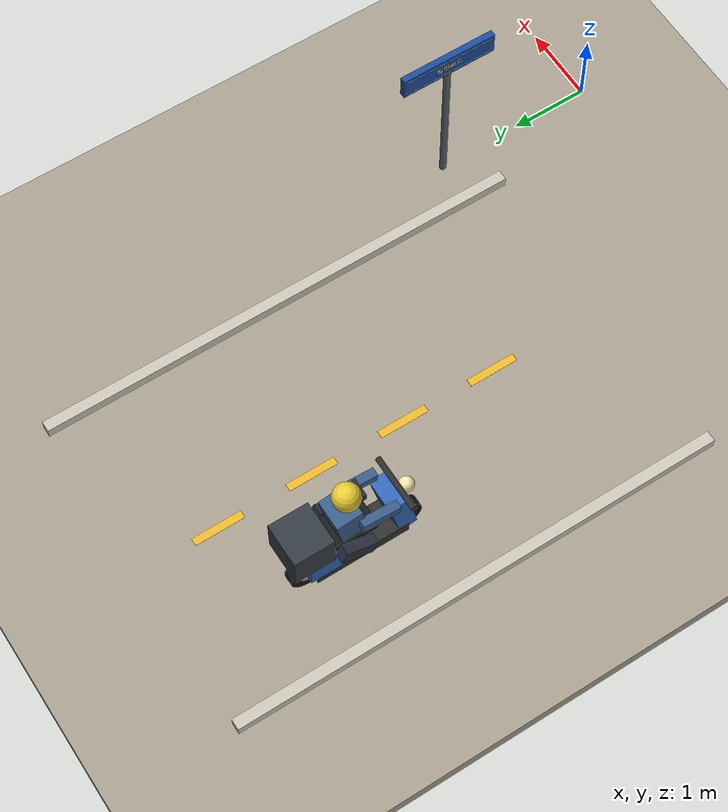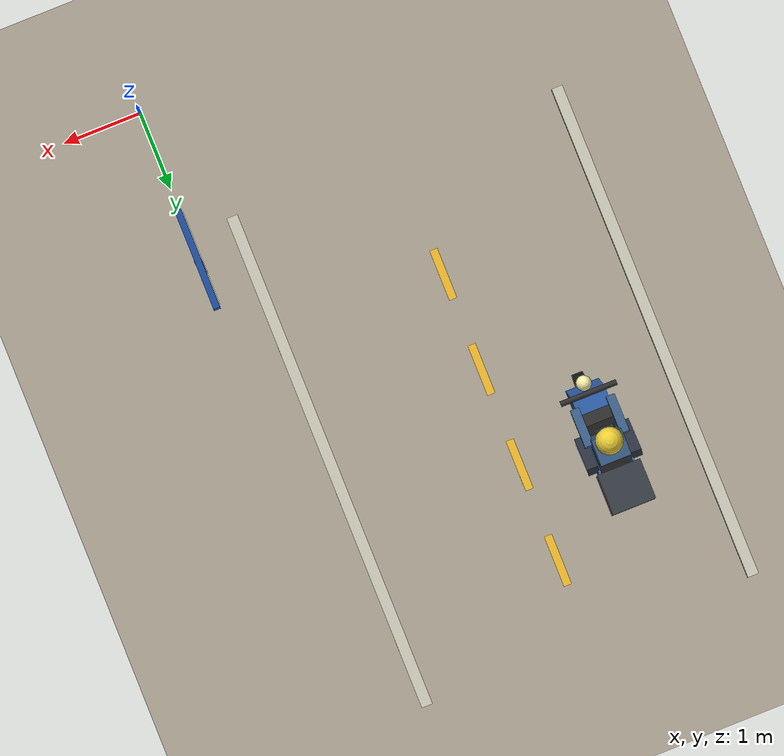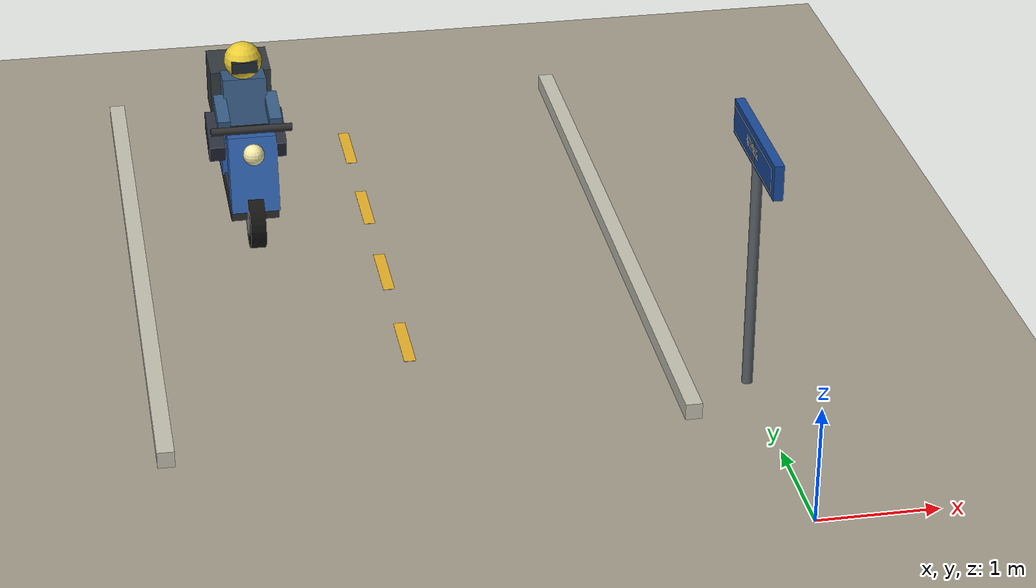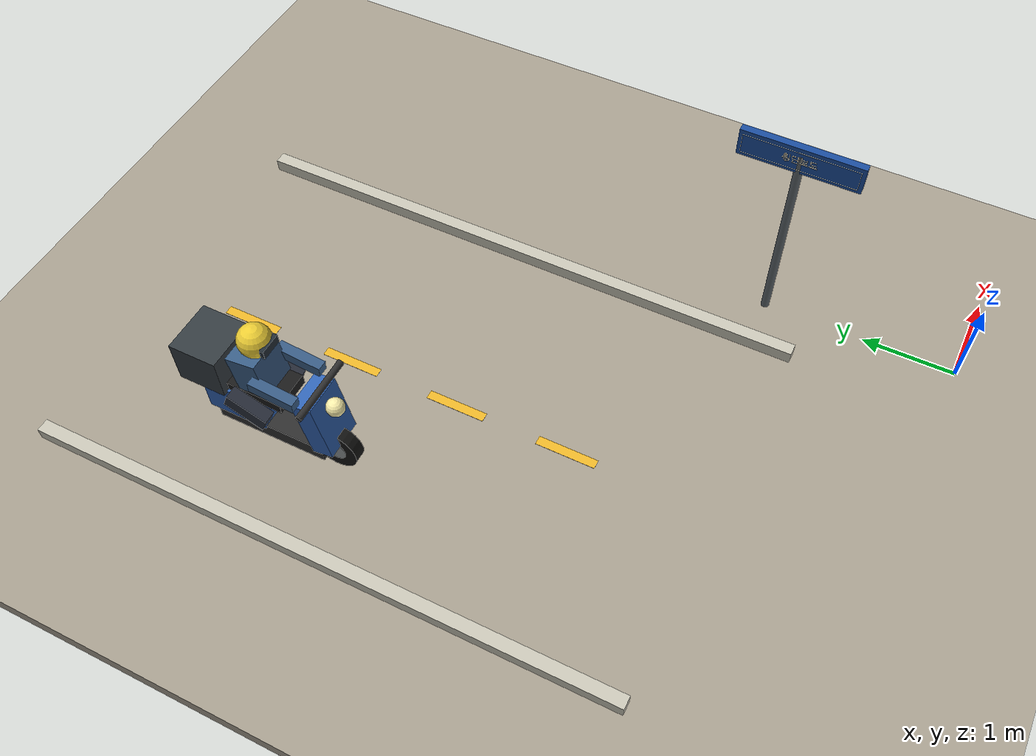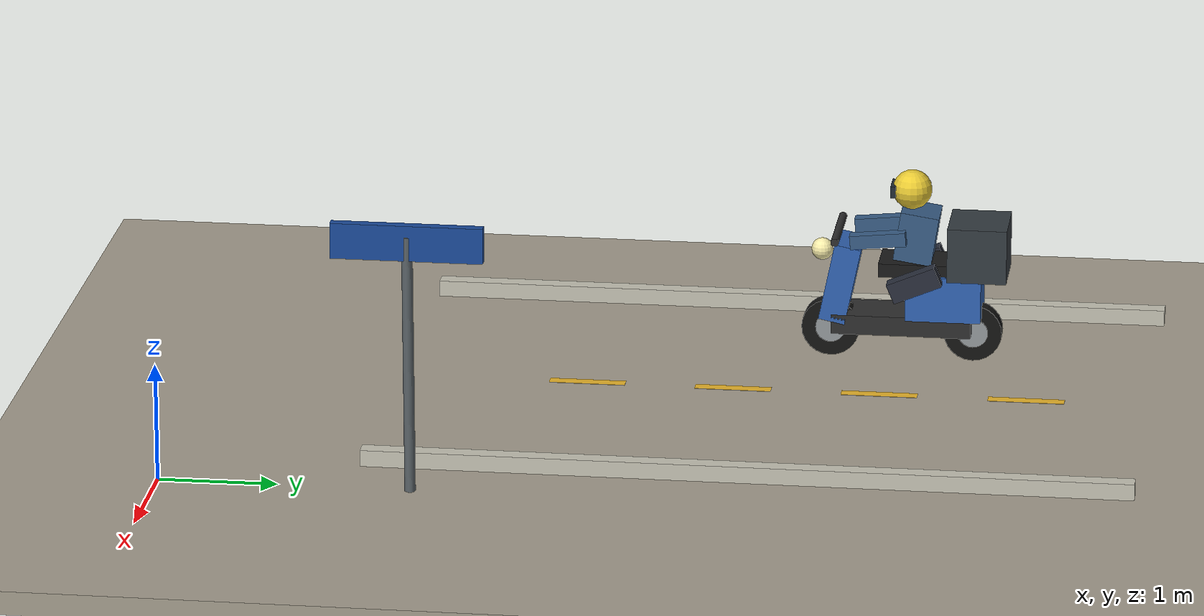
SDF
<sdf version="1.10">
 <world name="swan_market">
  <model name="ground">
   <static>true</static>
   <pose>15 0 -0.1 0 0 0</pose>
   <link name="body">
    <collision name="box_collision"><geometry><box><size>46 24 0.2</size></box></geometry></collision>
    <visual name="box_visual">
     <geometry><box><size>46 24 0.2</size></box></geometry>
     <material><ambient>0.64 0.61 0.55 1</ambient><diffuse>0.64 0.61 0.55 1</diffuse></material>
    </visual>
   </link>
  </model>
  <model name="entrance_curb_-4.83_1">
   <static>true</static>
   <pose>-4.83 4.8 0.07 0 0 0</pose>
   <link name="body">
    <collision name="box_collision"><geometry><box><size>0.14 6.4 0.14</size></box></geometry></collision>
    <visual name="box_visual">
     <geometry><box><size>0.14 6.4 0.14</size></box></geometry>
     <material><ambient>0.77 0.76 0.7 1</ambient><diffuse>0.77 0.76 0.7 1</diffuse></material>
    </visual>
   </link>
  </model>
  <model name="entrance_curb_-0.57_1">
   <static>true</static>
   <pose>-0.57 4.8 0.07 0 0 0</pose>
   <link name="body">
    <collision name="box_collision"><geometry><box><size>0.14 6.4 0.14</size></box></geometry></collision>
    <visual name="box_visual">
     <geometry><box><size>0.14 6.4 0.14</size></box></geometry>
     <material><ambient>0.77 0.76 0.7 1</ambient><diffuse>0.77 0.76 0.7 1</diffuse></material>
    </visual>
   </link>
  </model>
  <model name="road_center_line_1_0">
   <static>true</static>
   <pose>-2.7 3.2 0.016 0 0 0</pose>
   <link name="body">
    <visual name="box_visual">
     <geometry><box><size>0.1 0.65 0.003</size></box></geometry>
     <material><ambient>0.91 0.7 0.16 1</ambient><diffuse>0.91 0.7 0.16 1</diffuse></material>
    </visual>
   </link>
  </model>
  <model name="road_center_line_1_1">
   <static>true</static>
   <pose>-2.7 4.45 0.016 0 0 0</pose>
   <link name="body">
    <visual name="box_visual">
     <geometry><box><size>0.1 0.65 0.003</size></box></geometry>
     <material><ambient>0.91 0.7 0.16 1</ambient><diffuse>0.91 0.7 0.16 1</diffuse></material>
    </visual>
   </link>
  </model>
  <model name="road_center_line_1_2">
   <static>true</static>
   <pose>-2.7 5.7 0.016 0 0 0</pose>
   <link name="body">
    <visual name="box_visual">
     <geometry><box><size>0.1 0.65 0.003</size></box></geometry>
     <material><ambient>0.91 0.7 0.16 1</ambient><diffuse>0.91 0.7 0.16 1</diffuse></material>
    </visual>
   </link>
  </model>
  <model name="road_center_line_1_3">
   <static>true</static>
   <pose>-2.7 6.95 0.016 0 0 0</pose>
   <link name="body">
    <visual name="box_visual">
     <geometry><box><size>0.1 0.65 0.003</size></box></geometry>
     <material><ambient>0.91 0.7 0.16 1</ambient><diffuse>0.91 0.7 0.16 1</diffuse></material>
    </visual>
   </link>
  </model>
  <model name="crosswalk_sign_pole">
   <static>true</static>
   <pose>0 2.1 0 0 0 0</pose>
   <link name="body">
    <collision name="post_collision">
     <pose>0 0 1.1 0 0 0</pose>
     <geometry><cylinder><radius>0.045</radius><length>2.2</length></cylinder></geometry>
    </collision>
    <visual name="post_visual">
     <pose>0 0 1.1 0 0 0</pose>
     <geometry><cylinder><radius>0.045</radius><length>2.2</length></cylinder></geometry>
     <material><ambient>0.35 0.38 0.4 1</ambient><diffuse>0.35 0.38 0.4 1</diffuse></material>
    </visual>
   </link>
  </model>
  <model name="crosswalk_sign_back">
   <static>true</static>
   <pose>0 2.1 2.15 0 0 0</pose>
   <link name="body">
    <collision name="box_collision"><geometry><box><size>0.08 1.25 0.3</size></box></geometry></collision>
    <visual name="box_visual">
     <geometry><box><size>0.08 1.25 0.3</size></box></geometry>
     <material><ambient>0.1 0.29 0.6 1</ambient><diffuse>0.1 0.29 0.6 1</diffuse></material>
    </visual>
   </link>
  </model>
  <model name="sign_crosswalk">
   <static>true</static>
   <pose>-0.048 2.1 2.15 0 0 -1.5708</pose>
   <link name="body">
    <visual name="top_visual">
     <pose>0 -0.003 0.10687 0 0 0</pose>
     <geometry><box><size>1.1712 0.003 0.0036</size></box></geometry>
     <material><ambient>1 0.961 0.875 1</ambient><diffuse>1 0.961 0.875 1</diffuse></material>
    </visual>
    <visual name="bottom_visual">
     <pose>0 -0.003 -0.10687 0 0 0</pose>
     <geometry><box><size>1.1712 0.003 0.0036</size></box></geometry>
     <material><ambient>1 0.961 0.875 1</ambient><diffuse>1 0.961 0.875 1</diffuse></material>
    </visual>
    <visual name="left_visual">
     <pose>-0.5856 -0.003 0 0 0 0</pose>
     <geometry><box><size>0.0036 0.003 0.21375</size></box></geometry>
     <material><ambient>1 0.961 0.875 1</ambient><diffuse>1 0.961 0.875 1</diffuse></material>
    </visual>
    <visual name="right_visual">
     <pose>0.5856 -0.003 0 0 0 0</pose>
     <geometry><box><size>0.0036 0.003 0.21375</size></box></geometry>
     <material><ambient>1 0.961 0.875 1</ambient><diffuse>1 0.961 0.875 1</diffuse></material>
    </visual>
    <visual name="ink_0_visual">
     <pose>-0.14375 -0.003 0.053125 0 0 0</pose>
     <geometry><box><size>0.025 0.003 0.00625</size></box></geometry>
     <material><ambient>1 0.961 0.875 1</ambient><diffuse>1 0.961 0.875 1</diffuse></material>
    </visual>
    <visual name="ink_1_visual">
     <pose>-0.14687 -0.003 0.046875 0 0 0</pose>
     <geometry><box><size>0.01875 0.003 0.00625</size></box></geometry>
     <material><ambient>1 0.961 0.875 1</ambient><diffuse>1 0.961 0.875 1</diffuse></material>
    </visual>
    <visual name="ink_2_visual">
     <pose>0.13125 -0.003 0.046875 0 0 0</pose>
     <geometry><box><size>0.0625 0.003 0.00625</size></box></geometry>
     <material><ambient>1 0.961 0.875 1</ambient><diffuse>1 0.961 0.875 1</diffuse></material>
    </visual>
    <visual name="ink_3_visual">
     <pose>-0.14375 -0.003 0.040625 0 0 0</pose>
     <geometry><box><size>0.05 0.003 0.00625</size></box></geometry>
     <material><ambient>1 0.961 0.875 1</ambient><diffuse>1 0.961 0.875 1</diffuse></material>
    </visual>
    <visual name="ink_4_visual">
     <pose>-0.0625 -0.003 0.04375 0 0 0</pose>
     <geometry><box><size>0.0375 0.003 0.0125</size></box></geometry>
     <material><ambient>1 0.961 0.875 1</ambient><diffuse>1 0.961 0.875 1</diffuse></material>
    </visual>
    <visual name="ink_5_visual">
     <pose>0.071875 -0.003 0.04375 0 0 0</pose>
     <geometry><box><size>0.00625 0.003 0.0125</size></box></geometry>
     <material><ambient>1 0.961 0.875 1</ambient><diffuse>1 0.961 0.875 1</diffuse></material>
    </visual>
    <visual name="ink_6_visual">
     <pose>0.12187 -0.003 0.040625 0 0 0</pose>
     <geometry><box><size>0.00625 0.003 0.00625</size></box></geometry>
     <material><ambient>1 0.961 0.875 1</ambient><diffuse>1 0.961 0.875 1</diffuse></material>
    </visual>
    <visual name="ink_7_visual">
     <pose>-0.14375 -0.003 0.034375 0 0 0</pose>
     <geometry><box><size>0.025 0.003 0.00625</size></box></geometry>
     <material><ambient>1 0.961 0.875 1</ambient><diffuse>1 0.961 0.875 1</diffuse></material>
    </visual>
    <visual name="ink_8_visual">
     <pose>-0.01875 -0.003 0.04375 0 0 0</pose>
     <geometry><box><size>0.0125 0.003 0.025</size></box></geometry>
     <material><ambient>1 0.961 0.875 1</ambient><diffuse>1 0.961 0.875 1</diffuse></material>
    </visual>
    <visual name="ink_9_visual">
     <pose>0.01875 -0.003 0.040625 0 0 0</pose>
     <geometry><box><size>0.0125 0.003 0.01875</size></box></geometry>
     <material><ambient>1 0.961 0.875 1</ambient><diffuse>1 0.961 0.875 1</diffuse></material>
    </visual>
    <visual name="ink_10_visual">
     <pose>0.034375 -0.003 0.034375 0 0 0</pose>
     <geometry><box><size>0.00625 0.003 0.00625</size></box></geometry>
     <material><ambient>1 0.961 0.875 1</ambient><diffuse>1 0.961 0.875 1</diffuse></material>
    </visual>
    <visual name="ink_11_visual">
     <pose>0.06875 -0.003 0.034375 0 0 0</pose>
     <geometry><box><size>0.0125 0.003 0.00625</size></box></geometry>
     <material><ambient>1 0.961 0.875 1</ambient><diffuse>1 0.961 0.875 1</diffuse></material>
    </visual>
    <visual name="ink_12_visual">
     <pose>-0.14375 -0.003 0.028125 0 0 0</pose>
     <geometry><box><size>0.0375 0.003 0.00625</size></box></geometry>
     <material><ambient>1 0.961 0.875 1</ambient><diffuse>1 0.961 0.875 1</diffuse></material>
    </visual>
    <visual name="ink_13_visual">
     <pose>-0.0125 -0.003 0.028125 0 0 0</pose>
     <geometry><box><size>0.025 0.003 0.00625</size></box></geometry>
     <material><ambient>1 0.961 0.875 1</ambient><diffuse>1 0.961 0.875 1</diffuse></material>
    </visual>
    <visual name="ink_14_visual">
     <pose>0.04375 -0.003 0.028125 0 0 0</pose>
     <geometry><box><size>0.0625 0.003 0.00625</size></box></geometry>
     <material><ambient>1 0.961 0.875 1</ambient><diffuse>1 0.961 0.875 1</diffuse></material>
    </visual>
    <visual name="ink_15_visual">
     <pose>-0.1625 -0.003 0.021875 0 0 0</pose>
     <geometry><box><size>0.0125 0.003 0.00625</size></box></geometry>
     <material><ambient>1 0.961 0.875 1</ambient><diffuse>1 0.961 0.875 1</diffuse></material>
    </visual>
    <visual name="ink_16_visual">
     <pose>-0.12812 -0.003 0.021875 0 0 0</pose>
     <geometry><box><size>0.00625 0.003 0.00625</size></box></geometry>
     <material><ambient>1 0.961 0.875 1</ambient><diffuse>1 0.961 0.875 1</diffuse></material>
    </visual>
    <visual name="ink_17_visual">
     <pose>-0.14375 -0.003 0.015625 0 0 0</pose>
     <geometry><box><size>0.0375 0.003 0.00625</size></box></geometry>
     <material><ambient>1 0.961 0.875 1</ambient><diffuse>1 0.961 0.875 1</diffuse></material>
    </visual>
    <visual name="ink_18_visual">
     <pose>-0.078125 -0.003 0.025 0 0 0</pose>
     <geometry><box><size>0.00625 0.003 0.025</size></box></geometry>
     <material><ambient>1 0.961 0.875 1</ambient><diffuse>1 0.961 0.875 1</diffuse></material>
    </visual>
    <visual name="ink_19_visual">
     <pose>0.01875 -0.003 0.01875 0 0 0</pose>
     <geometry><box><size>0.0125 0.003 0.0125</size></box></geometry>
     <material><ambient>1 0.961 0.875 1</ambient><diffuse>1 0.961 0.875 1</diffuse></material>
    </visual>
    <visual name="ink_20_visual">
     <pose>0.071875 -0.003 0.01875 0 0 0</pose>
     <geometry><box><size>0.00625 0.003 0.0125</size></box></geometry>
     <material><ambient>1 0.961 0.875 1</ambient><diffuse>1 0.961 0.875 1</diffuse></material>
    </visual>
    <visual name="ink_21_visual">
     <pose>0.10625 -0.003 0.028125 0 0 0</pose>
     <geometry><box><size>0.0125 0.003 0.03125</size></box></geometry>
     <material><ambient>1 0.961 0.875 1</ambient><diffuse>1 0.961 0.875 1</diffuse></material>
    </visual>
    <visual name="ink_22_visual">
     <pose>-0.14375 -0.003 0.009375 0 0 0</pose>
     <geometry><box><size>0.0125 0.003 0.00625</size></box></geometry>
     <material><ambient>1 0.961 0.875 1</ambient><diffuse>1 0.961 0.875 1</diffuse></material>
    </visual>
    <visual name="ink_23_visual">
     <pose>-0.05625 -0.003 0.009375 0 0 0</pose>
     <geometry><box><size>0.05 0.003 0.00625</size></box></geometry>
     <material><ambient>1 0.961 0.875 1</ambient><diffuse>1 0.961 0.875 1</diffuse></material>
    </visual>
    <visual name="ink_24_visual">
     <pose>0.13437 -0.003 0.009375 0 0 0</pose>
     <geometry><box><size>0.06875 0.003 0.00625</size></box></geometry>
     <material><ambient>1 0.961 0.875 1</ambient><diffuse>1 0.961 0.875 1</diffuse></material>
    </visual>
    <visual name="ink_25_visual">
     <pose>-0.14375 -0.003 0.003125 0 0 0</pose>
     <geometry><box><size>0.0625 0.003 0.00625</size></box></geometry>
     <material><ambient>1 0.961 0.875 1</ambient><diffuse>1 0.961 0.875 1</diffuse></material>
    </visual>
    <visual name="ink_26_visual">
     <pose>0.04375 -0.003 0.00625 0 0 0</pose>
     <geometry><box><size>0.0625 0.003 0.0125</size></box></geometry>
     <material><ambient>1 0.961 0.875 1</ambient><diffuse>1 0.961 0.875 1</diffuse></material>
    </visual>
    <visual name="ink_27_visual">
     <pose>0.13125 -0.003 0.003125 0 0 0</pose>
     <geometry><box><size>0.0125 0.003 0.00625</size></box></geometry>
     <material><ambient>1 0.961 0.875 1</ambient><diffuse>1 0.961 0.875 1</diffuse></material>
    </visual>
    <visual name="ink_28_visual">
     <pose>-0.1625 -0.003 -0.003125 0 0 0</pose>
     <geometry><box><size>0.025 0.003 0.00625</size></box></geometry>
     <material><ambient>1 0.961 0.875 1</ambient><diffuse>1 0.961 0.875 1</diffuse></material>
    </visual>
    <visual name="ink_29_visual">
     <pose>-0.13438 -0.003 -0.003125 0 0 0</pose>
     <geometry><box><size>0.01875 0.003 0.00625</size></box></geometry>
     <material><ambient>1 0.961 0.875 1</ambient><diffuse>1 0.961 0.875 1</diffuse></material>
    </visual>
    <visual name="ink_30_visual">
     <pose>-0.10312 -0.003 0.025 0 0 0</pose>
     <geometry><box><size>0.00625 0.003 0.0625</size></box></geometry>
     <material><ambient>1 0.961 0.875 1</ambient><diffuse>1 0.961 0.875 1</diffuse></material>
    </visual>
    <visual name="ink_31_visual">
     <pose>-0.01875 -0.003 0.009375 0 0 0</pose>
     <geometry><box><size>0.0125 0.003 0.03125</size></box></geometry>
     <material><ambient>1 0.961 0.875 1</ambient><diffuse>1 0.961 0.875 1</diffuse></material>
    </visual>
    <visual name="ink_32_visual">
     <pose>-0.12812 -0.003 -0.009375 0 0 0</pose>
     <geometry><box><size>0.04375 0.003 0.00625</size></box></geometry>
     <material><ambient>1 0.961 0.875 1</ambient><diffuse>1 0.961 0.875 1</diffuse></material>
    </visual>
    <visual name="ink_33_visual">
     <pose>-0.021875 -0.003 -0.009375 0 0 0</pose>
     <geometry><box><size>0.00625 0.003 0.00625</size></box></geometry>
     <material><ambient>1 0.961 0.875 1</ambient><diffuse>1 0.961 0.875 1</diffuse></material>
    </visual>
    <visual name="ink_34_visual">
     <pose>0.04375 -0.003 -0.00625 0 0 0</pose>
     <geometry><box><size>0.0125 0.003 0.0125</size></box></geometry>
     <material><ambient>1 0.961 0.875 1</ambient><diffuse>1 0.961 0.875 1</diffuse></material>
    </visual>
    <visual name="ink_35_visual">
     <pose>0.13437 -0.003 -0.00625 0 0 0</pose>
     <geometry><box><size>0.00625 0.003 0.0125</size></box></geometry>
     <material><ambient>1 0.961 0.875 1</ambient><diffuse>1 0.961 0.875 1</diffuse></material>
    </visual>
    <visual name="ink_36_visual">
     <pose>-0.15313 -0.003 -0.015625 0 0 0</pose>
     <geometry><box><size>0.01875 0.003 0.00625</size></box></geometry>
     <material><ambient>1 0.961 0.875 1</ambient><diffuse>1 0.961 0.875 1</diffuse></material>
    </visual>
    <visual name="ink_37_visual">
     <pose>0.04375 -0.003 -0.015625 0 0 0</pose>
     <geometry><box><size>0.075 0.003 0.00625</size></box></geometry>
     <material><ambient>1 0.961 0.875 1</ambient><diffuse>1 0.961 0.875 1</diffuse></material>
    </visual>
    <visual name="ink_38_visual">
     <pose>-0.15625 -0.003 -0.021875 0 0 0</pose>
     <geometry><box><size>0.0125 0.003 0.00625</size></box></geometry>
     <material><ambient>1 0.961 0.875 1</ambient><diffuse>1 0.961 0.875 1</diffuse></material>
    </visual>
    <visual name="ink_39_visual">
     <pose>-0.10625 -0.003 -0.01875 0 0 0</pose>
     <geometry><box><size>0.0125 0.003 0.0125</size></box></geometry>
     <material><ambient>1 0.961 0.875 1</ambient><diffuse>1 0.961 0.875 1</diffuse></material>
    </visual>
    <visual name="ink_40_visual">
     <pose>-0.06875 -0.003 -0.015625 0 0 0</pose>
     <geometry><box><size>0.0125 0.003 0.01875</size></box></geometry>
     <material><ambient>1 0.961 0.875 1</ambient><diffuse>1 0.961 0.875 1</diffuse></material>
    </visual>
    <visual name="ink_41_visual">
     <pose>0.046875 -0.003 -0.021875 0 0 0</pose>
     <geometry><box><size>0.08125 0.003 0.00625</size></box></geometry>
     <material><ambient>1 0.961 0.875 1</ambient><diffuse>1 0.961 0.875 1</diffuse></material>
    </visual>
    <visual name="ink_42_visual">
     <pose>0.13437 -0.003 -0.01875 0 0 0</pose>
     <geometry><box><size>0.08125 0.003 0.0125</size></box></geometry>
     <material><ambient>1 0.961 0.875 1</ambient><diffuse>1 0.961 0.875 1</diffuse></material>
    </visual>
    <visual name="ink_43_visual">
     <pose>-0.13125 -0.003 -0.028125 0 0 0</pose>
     <geometry><box><size>0.05 0.003 0.00625</size></box></geometry>
     <material><ambient>1 0.961 0.875 1</ambient><diffuse>1 0.961 0.875 1</diffuse></material>
    </visual>
    <visual name="ink_44_visual">
     <pose>-0.04375 -0.003 -0.028125 0 0 0</pose>
     <geometry><box><size>0.0625 0.003 0.00625</size></box></geometry>
     <material><ambient>1 0.961 0.875 1</ambient><diffuse>1 0.961 0.875 1</diffuse></material>
    </visual>
    <visual name="ink_45_visual">
     <pose>-0.13125 -0.003 -0.034375 0 0 0</pose>
     <geometry><box><size>0.025 0.003 0.00625</size></box></geometry>
     <material><ambient>1 0.961 0.875 1</ambient><diffuse>1 0.961 0.875 1</diffuse></material>
    </visual>
   </link>
  </model>
  <model name="traffic_motorcycle_2">
   <static>true</static>
   <pose>-3.75 5.8 0 0 0 -1.5708</pose>
   <link name="body">
    <collision name="tire_0_collision">
     <pose>-0.61 0 0.25 1.5708 0 0</pose>
     <geometry><cylinder><radius>0.25</radius><length>0.14</length></cylinder></geometry>
    </collision>
    <visual name="tire_0_visual">
     <pose>-0.61 0 0.25 1.5708 0 0</pose>
     <geometry><cylinder><radius>0.25</radius><length>0.14</length></cylinder></geometry>
     <material><ambient>0.075 0.075 0.07 1</ambient><diffuse>0.075 0.075 0.07 1</diffuse></material>
    </visual>
    <visual name="hub_0_visual">
     <pose>-0.61 0 0.25 1.5708 0 0</pose>
     <geometry><cylinder><radius>0.13</radius><length>0.145</length></cylinder></geometry>
     <material><ambient>0.57 0.59 0.6 1</ambient><diffuse>0.57 0.59 0.6 1</diffuse></material>
    </visual>
    <collision name="tire_1_collision">
     <pose>0.62 0 0.25 1.5708 0 0</pose>
     <geometry><cylinder><radius>0.25</radius><length>0.14</length></cylinder></geometry>
    </collision>
    <visual name="tire_1_visual">
     <pose>0.62 0 0.25 1.5708 0 0</pose>
     <geometry><cylinder><radius>0.25</radius><length>0.14</length></cylinder></geometry>
     <material><ambient>0.075 0.075 0.07 1</ambient><diffuse>0.075 0.075 0.07 1</diffuse></material>
    </visual>
    <visual name="hub_1_visual">
     <pose>0.62 0 0.25 1.5708 0 0</pose>
     <geometry><cylinder><radius>0.13</radius><length>0.145</length></cylinder></geometry>
     <material><ambient>0.57 0.59 0.6 1</ambient><diffuse>0.57 0.59 0.6 1</diffuse></material>
    </visual>
    <collision name="deck_collision">
     <pose>0 0 0.33 0 0 0</pose>
     <geometry><box><size>1.2 0.43 0.17</size></box></geometry>
    </collision>
    <visual name="deck_visual">
     <pose>0 0 0.33 0 0 0</pose>
     <geometry><box><size>1.2 0.43 0.17</size></box></geometry>
     <material><ambient>0.18 0.18 0.18 1</ambient><diffuse>0.18 0.18 0.18 1</diffuse></material>
    </visual>
    <collision name="rear_body_collision">
     <pose>-0.36 0 0.59 0 0 0</pose>
     <geometry><box><size>0.65 0.46 0.4</size></box></geometry>
    </collision>
    <visual name="rear_body_visual">
     <pose>-0.36 0 0.59 0 0 0</pose>
     <geometry><box><size>0.65 0.46 0.4</size></box></geometry>
     <material><ambient>0.19 0.39 0.7 1</ambient><diffuse>0.19 0.39 0.7 1</diffuse></material>
    </visual>
    <collision name="seat_collision">
     <pose>-0.2 0 0.83 0 0 0</pose>
     <geometry><box><size>0.8 0.4 0.12</size></box></geometry>
    </collision>
    <visual name="seat_visual">
     <pose>-0.2 0 0.83 0 0 0</pose>
     <geometry><box><size>0.8 0.4 0.12</size></box></geometry>
     <material><ambient>0.1 0.1 0.1 1</ambient><diffuse>0.1 0.1 0.1 1</diffuse></material>
    </visual>
    <collision name="front_fairing_collision">
     <pose>0.53 0 0.69 0 -0.2 0</pose>
     <geometry><box><size>0.23 0.43 0.69</size></box></geometry>
    </collision>
    <visual name="front_fairing_visual">
     <pose>0.53 0 0.69 0 -0.2 0</pose>
     <geometry><box><size>0.23 0.43 0.69</size></box></geometry>
     <material><ambient>0.19 0.39 0.7 1</ambient><diffuse>0.19 0.39 0.7 1</diffuse></material>
    </visual>
    <collision name="handlebar_collision">
     <pose>0.56 0 1.12 1.5708 0 0</pose>
     <geometry><cylinder><radius>0.035</radius><length>0.72</length></cylinder></geometry>
    </collision>
    <visual name="handlebar_visual">
     <pose>0.56 0 1.12 1.5708 0 0</pose>
     <geometry><cylinder><radius>0.035</radius><length>0.72</length></cylinder></geometry>
     <material><ambient>0.18 0.18 0.18 1</ambient><diffuse>0.18 0.18 0.18 1</diffuse></material>
    </visual>
    <visual name="headlight_visual">
     <pose>0.7 0 0.94 0 0 0</pose>
     <geometry><sphere><radius>0.095</radius></sphere></geometry>
     <material><ambient>0.96 0.92 0.66 1</ambient><diffuse>0.96 0.92 0.66 1</diffuse></material>
    </visual>
    <collision name="delivery_box_collision">
     <pose>-0.65 0 1.01 0 0 0</pose>
     <geometry><box><size>0.51 0.55 0.48</size></box></geometry>
    </collision>
    <visual name="delivery_box_visual">
     <pose>-0.65 0 1.01 0 0 0</pose>
     <geometry><box><size>0.51 0.55 0.48</size></box></geometry>
     <material><ambient>0.2 0.23 0.25 1</ambient><diffuse>0.2 0.23 0.25 1</diffuse></material>
    </visual>
    <collision name="rider_torso_collision">
     <pose>-0.12 0 1.12 0 -0.15 0</pose>
     <geometry><box><size>0.33 0.39 0.43</size></box></geometry>
    </collision>
    <visual name="rider_torso_visual">
     <pose>-0.12 0 1.12 0 -0.15 0</pose>
     <geometry><box><size>0.33 0.39 0.43</size></box></geometry>
     <material><ambient>0.22 0.36 0.52 1</ambient><diffuse>0.22 0.36 0.52 1</diffuse></material>
    </visual>
    <collision name="helmet_collision">
     <pose>-0.07 0 1.51 0 0 0</pose>
     <geometry><sphere><radius>0.17</radius></sphere></geometry>
    </collision>
    <visual name="helmet_visual">
     <pose>-0.07 0 1.51 0 0 0</pose>
     <geometry><sphere><radius>0.17</radius></sphere></geometry>
     <material><ambient>0.91 0.79 0.2 1</ambient><diffuse>0.91 0.79 0.2 1</diffuse></material>
    </visual>
    <visual name="visor_visual">
     <pose>0.087 0 1.51 0 0 0</pose>
     <geometry><box><size>0.045 0.23 0.1</size></box></geometry>
     <material><ambient>0.13 0.17 0.2 1</ambient><diffuse>0.13 0.17 0.2 1</diffuse></material>
    </visual>
    <collision name="rider_leg_-1_collision">
     <pose>-0.12 -0.28 0.75 0 0.4 0</pose>
     <geometry><box><size>0.44 0.14 0.18</size></box></geometry>
    </collision>
    <visual name="rider_leg_-1_visual">
     <pose>-0.12 -0.28 0.75 0 0.4 0</pose>
     <geometry><box><size>0.44 0.14 0.18</size></box></geometry>
     <material><ambient>0.16 0.18 0.23 1</ambient><diffuse>0.16 0.18 0.23 1</diffuse></material>
    </visual>
    <collision name="rider_arm_-1_collision">
     <pose>0.2 -0.23 1.12 0 0.1 0</pose>
     <geometry><box><size>0.48 0.11 0.12</size></box></geometry>
    </collision>
    <visual name="rider_arm_-1_visual">
     <pose>0.2 -0.23 1.12 0 0.1 0</pose>
     <geometry><box><size>0.48 0.11 0.12</size></box></geometry>
     <material><ambient>0.22 0.36 0.52 1</ambient><diffuse>0.22 0.36 0.52 1</diffuse></material>
    </visual>
    <collision name="rider_leg_1_collision">
     <pose>-0.12 0.28 0.75 0 0.4 0</pose>
     <geometry><box><size>0.44 0.14 0.18</size></box></geometry>
    </collision>
    <visual name="rider_leg_1_visual">
     <pose>-0.12 0.28 0.75 0 0.4 0</pose>
     <geometry><box><size>0.44 0.14 0.18</size></box></geometry>
     <material><ambient>0.16 0.18 0.23 1</ambient><diffuse>0.16 0.18 0.23 1</diffuse></material>
    </visual>
    <collision name="rider_arm_1_collision">
     <pose>0.2 0.23 1.12 0 0.1 0</pose>
     <geometry><box><size>0.48 0.11 0.12</size></box></geometry>
    </collision>
    <visual name="rider_arm_1_visual">
     <pose>0.2 0.23 1.12 0 0.1 0</pose>
     <geometry><box><size>0.48 0.11 0.12</size></box></geometry>
     <material><ambient>0.22 0.36 0.52 1</ambient><diffuse>0.22 0.36 0.52 1</diffuse></material>
    </visual>
   </link>
  </model>
 </world>
</sdf>
